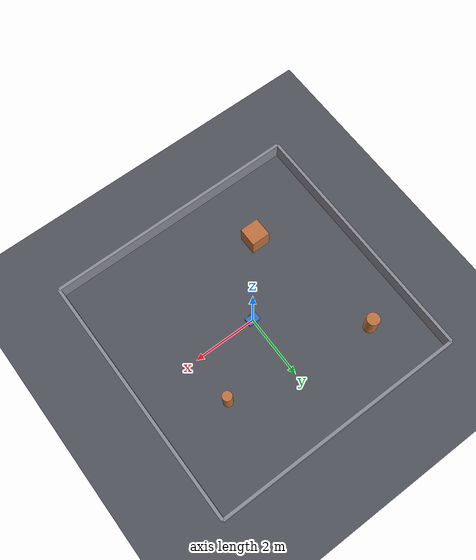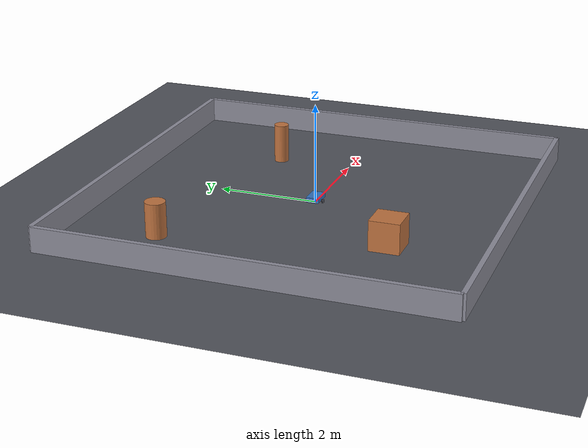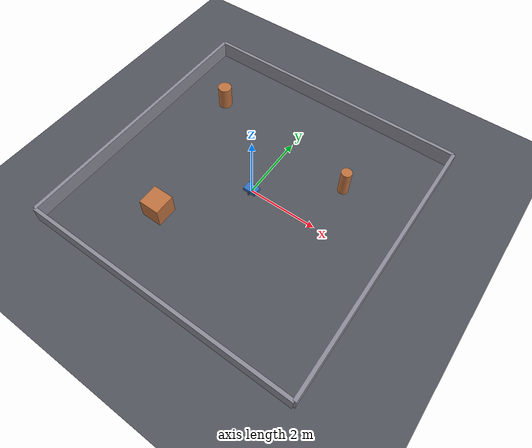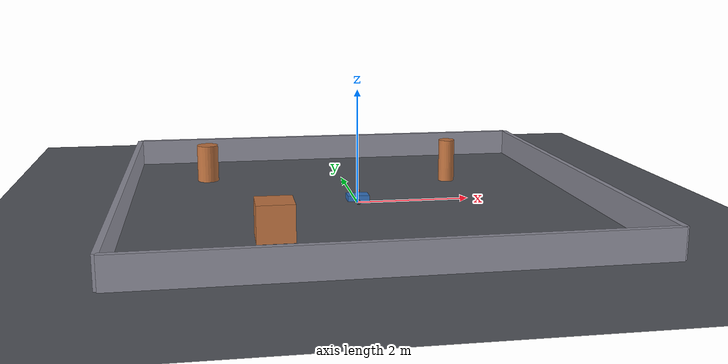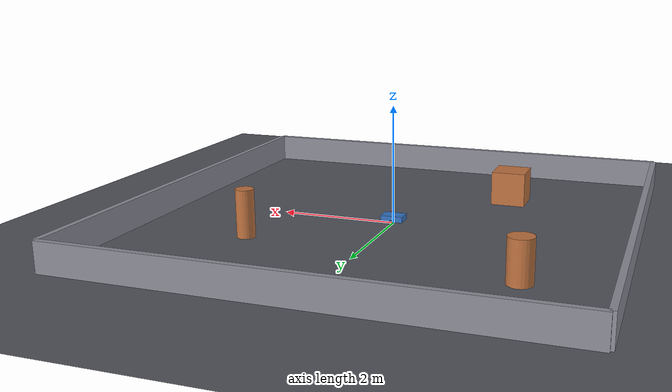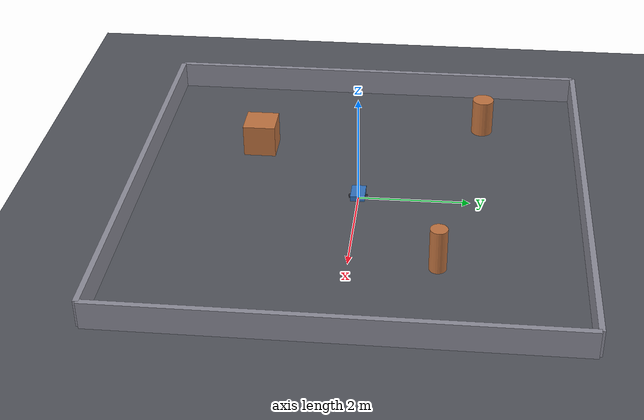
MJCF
<?xml version="1.0" encoding="utf-8"?>
<mujoco model="workcell010_n_probe">
  <compiler angle="radian" autolimits="true"/>
  <option timestep="0.002" gravity="0 0 -9.81" integrator="implicitfast"/>
  <default>
    <geom friction="0.9 0.005 0.0001" condim="3"/>
  </default>

  <worldbody>
    <geom name="floor" type="plane" size="12 12 0.05" rgba="0.32 0.33 0.36 1"
          friction="1.2 0.01 0.0002"/>
    <geom name="wall_north" type="box" pos="0  4.0 0.25" size="4.0 0.05 0.25" rgba="0.55 0.55 0.6 1"/>
    <geom name="wall_south" type="box" pos="0 -4.0 0.25" size="4.0 0.05 0.25" rgba="0.55 0.55 0.6 1"/>
    <geom name="wall_east"  type="box" pos=" 4.0 0 0.25" size="0.05 4.0 0.25" rgba="0.55 0.55 0.6 1"/>
    <geom name="wall_west"  type="box" pos="-4.0 0 0.25" size="0.05 4.0 0.25" rgba="0.55 0.55 0.6 1"/>
    <geom name="pillar_a" type="cylinder" pos=" 2.00  1.50 0.40" size="0.15 0.40" rgba="0.75 0.45 0.25 1"/>
    <geom name="pillar_b" type="box"      pos="-1.60 -2.00 0.30" size="0.30 0.30 0.30" rgba="0.75 0.45 0.25 1"/>
    <geom name="pillar_c" type="cylinder" pos="-2.60  2.20 0.35" size="0.20 0.35" rgba="0.75 0.45 0.25 1"/>

    <body name="base_link" pos="0 0 0.040">
      <joint name="slide_x" type="slide" axis="1 0 0" damping="0.0"/>
      <joint name="slide_y" type="slide" axis="0 1 0" damping="0.0"/>
      <joint name="slide_z" type="slide" axis="0 0 1" damping="0.0"/>
      <joint name="yaw"     type="hinge" axis="0 0 1" damping="0.02" armature="0.01"/>
      <geom name="chassis" type="box" pos="0 0 0.060" size="0.19 0.13 0.05"
            mass="6.0" rgba="0.20 0.45 0.75 1"/>
      <site name="lidar_site" pos="0.02 0 0.17" size="0.02" rgba="0.95 0.25 0.25 1"/>

      <body name="wheel_left" pos="0 0.15 0">
        <joint name="wheel_left_joint" type="hinge" axis="0 1 0" damping="0.02" armature="0.004"/>
        <geom name="wheel_left_geom" type="cylinder" size="0.04 0.02"
              quat="0.70710678 0.70710678 0 0" mass="0.45"
              friction="1.6 0.01 0.0001" rgba="0.15 0.15 0.18 1"/>
      </body>
      <body name="wheel_right" pos="0 -0.15 0">
        <joint name="wheel_right_joint" type="hinge" axis="0 1 0" damping="0.02" armature="0.004"/>
        <geom name="wheel_right_geom" type="cylinder" size="0.04 0.02"
              quat="0.70710678 0.70710678 0 0" mass="0.45"
              friction="1.6 0.01 0.0001" rgba="0.15 0.15 0.18 1"/>
      </body>
    </body>
  </worldbody>

  <actuator>
    <motor name="wheel_left_motor"  joint="wheel_left_joint"  ctrlrange="-8 8"/>
    <motor name="wheel_right_motor" joint="wheel_right_joint" ctrlrange="-8 8"/>
  </actuator>
</mujoco>
